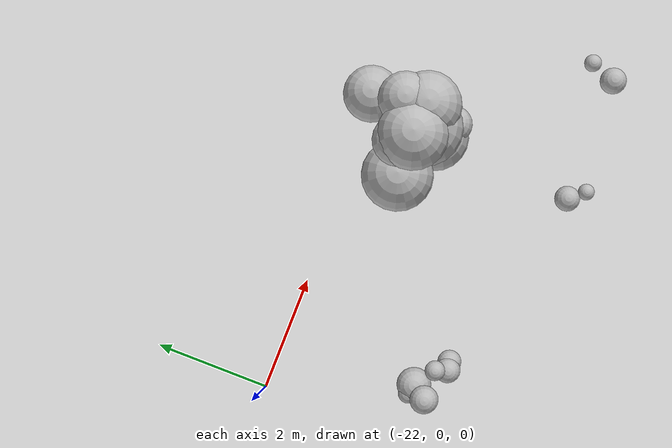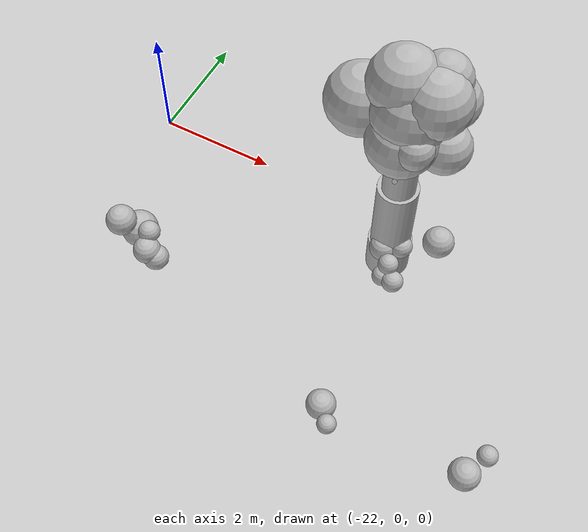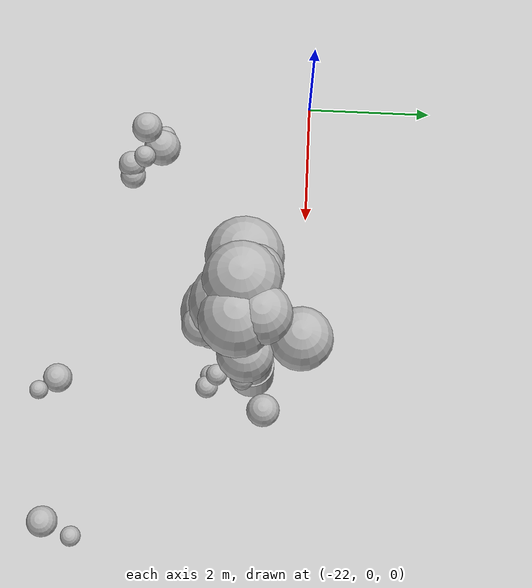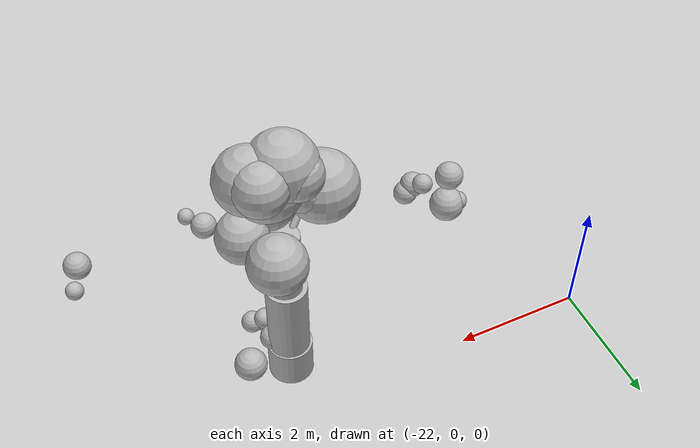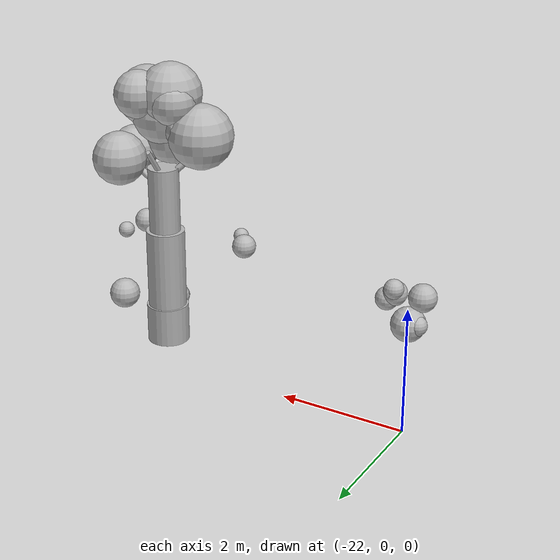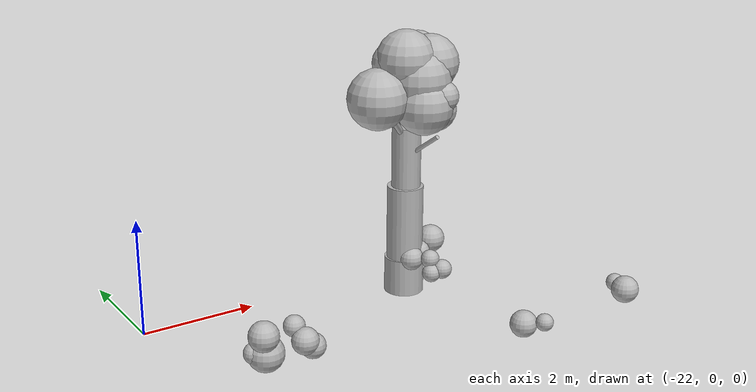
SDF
<sdf version="1.6">
 <world name="default">
  <model name="bush_10">
   <static>true</static>
   <pose>-17.3546 -0.7563 0 0 0 0</pose>
   <link name="trunk">
    <pose>0 0 1.5000 0 0 0</pose>
    <collision name="trunk_c">
     <geometry><cylinder><radius>0.3500</radius><length>3.0000</length></cylinder></geometry>
    </collision>
   </link>
   <link name="trunk_v0">
    <pose>0.0006 -0.0006 0.3100 0 0 0</pose>
    <visual name="trunk_v0_v">
     <geometry><cylinder><radius>0.3448</radius><length>0.6448</length></cylinder></geometry>
     <material>
      <script>
       <uri>model://bushfire/materials/scripts</uri>
       <uri>model://bushfire/materials/textures</uri>
       <name>Bushfire/CharBark</name>
      </script>
     </material>
    </visual>
   </link>
   <link name="trunk_v1">
    <pose>0.0047 -0.0043 1.2700 0 0 0</pose>
    <visual name="trunk_v1_v">
     <geometry><cylinder><radius>0.3150</radius><length>1.3520</length></cylinder></geometry>
     <material>
      <script>
       <uri>model://bushfire/materials/scripts</uri>
       <uri>model://bushfire/materials/textures</uri>
       <name>Bushfire/BarkStringy</name>
      </script>
     </material>
    </visual>
   </link>
   <link name="trunk_v2">
    <pose>0.0117 -0.0109 2.4600 0 0 0</pose>
    <visual name="trunk_v2_v">
     <geometry><cylinder><radius>0.2520</radius><length>1.1232</length></cylinder></geometry>
     <material>
      <script>
       <uri>model://bushfire/materials/scripts</uri>
       <uri>model://bushfire/materials/textures</uri>
       <name>Bushfire/BarkStringy</name>
      </script>
     </material>
    </visual>
   </link>
   <link name="branch0">
    <pose>0.0143 0.1804 3.0889 0 0.5647 1.4917</pose>
    <visual name="branch0_v">
     <geometry><cylinder><radius>0.0425</radius><length>0.6765</length></cylinder></geometry>
     <material>
      <script>
       <uri>model://bushfire/materials/scripts</uri>
       <uri>model://bushfire/materials/textures</uri>
       <name>Bushfire/BarkStringy</name>
      </script>
     </material>
    </visual>
   </link>
   <link name="branch1">
    <pose>-0.2603 -0.1619 3.0625 0 0.8258 3.6980</pose>
    <visual name="branch1_v">
     <geometry><cylinder><radius>0.0535</radius><length>0.8341</length></cylinder></geometry>
     <material>
      <script>
       <uri>model://bushfire/materials/scripts</uri>
       <uri>model://bushfire/materials/textures</uri>
       <name>Bushfire/BarkStringy</name>
      </script>
     </material>
    </visual>
   </link>
   <link name="branch2">
    <pose>0.0780 -0.3516 2.7149 0 0.9347 4.9307</pose>
    <visual name="branch2_v">
     <geometry><cylinder><radius>0.0353</radius><length>0.8954</length></cylinder></geometry>
     <material>
      <script>
       <uri>model://bushfire/materials/scripts</uri>
       <uri>model://bushfire/materials/textures</uri>
       <name>Bushfire/BarkStringy</name>
      </script>
     </material>
    </visual>
   </link>
   <link name="branch3">
    <pose>0.3339 0.0701 2.9145 0 0.8623 6.4902</pose>
    <visual name="branch3_v">
     <geometry><cylinder><radius>0.0526</radius><length>0.8986</length></cylinder></geometry>
     <material>
      <script>
       <uri>model://bushfire/materials/scripts</uri>
       <uri>model://bushfire/materials/textures</uri>
       <name>Bushfire/BarkStringy</name>
      </script>
     </material>
    </visual>
   </link>
   <link name="foliage0">
    <pose>0.3228 0.1455 4.2177 0 0 0</pose>
    <visual name="foliage0_v">
     <geometry><sphere><radius>0.3843</radius></sphere></geometry>
     <material>
      <script>
       <uri>model://bushfire/materials/scripts</uri>
       <uri>model://bushfire/materials/textures</uri>
       <name>Bushfire/Foliage2</name>
      </script>
     </material>
    </visual>
   </link>
   <link name="foliage1">
    <pose>-0.0994 -0.1225 4.2199 0 0 0</pose>
    <visual name="foliage1_v">
     <geometry><sphere><radius>0.5022</radius></sphere></geometry>
     <material>
      <script>
       <uri>model://bushfire/materials/scripts</uri>
       <uri>model://bushfire/materials/textures</uri>
       <name>Bushfire/Foliage1</name>
      </script>
     </material>
    </visual>
   </link>
   <link name="foliage2">
    <pose>0.3181 -0.6057 3.6298 0 0 0</pose>
    <visual name="foliage2_v">
     <geometry><sphere><radius>0.2703</radius></sphere></geometry>
     <material>
      <script>
       <uri>model://bushfire/materials/scripts</uri>
       <uri>model://bushfire/materials/textures</uri>
       <name>Bushfire/Foliage0</name>
      </script>
     </material>
    </visual>
   </link>
   <link name="foliage3">
    <pose>0.3659 -0.1664 4.1140 0 0 0</pose>
    <visual name="foliage3_v">
     <geometry><sphere><radius>0.4836</radius></sphere></geometry>
     <material>
      <script>
       <uri>model://bushfire/materials/scripts</uri>
       <uri>model://bushfire/materials/textures</uri>
       <name>Bushfire/Foliage2</name>
      </script>
     </material>
    </visual>
   </link>
   <link name="foliage4">
    <pose>-0.2369 0.0324 4.1385 0 0 0</pose>
    <visual name="foliage4_v">
     <geometry><sphere><radius>0.3698</radius></sphere></geometry>
     <material>
      <script>
       <uri>model://bushfire/materials/scripts</uri>
       <uri>model://bushfire/materials/textures</uri>
       <name>Bushfire/Foliage2</name>
      </script>
     </material>
    </visual>
   </link>
   <link name="foliage5">
    <pose>-0.6491 -0.1185 3.6133 0 0 0</pose>
    <visual name="foliage5_v">
     <geometry><sphere><radius>0.5212</radius></sphere></geometry>
     <material>
      <script>
       <uri>model://bushfire/materials/scripts</uri>
       <uri>model://bushfire/materials/textures</uri>
       <name>Bushfire/Foliage0</name>
      </script>
     </material>
    </visual>
   </link>
   <link name="foliage6">
    <pose>0.0909 -0.2421 3.8781 0 0 0</pose>
    <visual name="foliage6_v">
     <geometry><sphere><radius>0.5459</radius></sphere></geometry>
     <material>
      <script>
       <uri>model://bushfire/materials/scripts</uri>
       <uri>model://bushfire/materials/textures</uri>
       <name>Bushfire/Foliage0</name>
      </script>
     </material>
    </visual>
   </link>
   <link name="foliage7">
    <pose>0.5593 -0.0529 3.2353 0 0 0</pose>
    <visual name="foliage7_v">
     <geometry><sphere><radius>0.3782</radius></sphere></geometry>
     <material>
      <script>
       <uri>model://bushfire/materials/scripts</uri>
       <uri>model://bushfire/materials/textures</uri>
       <name>Bushfire/Foliage1</name>
      </script>
     </material>
    </visual>
   </link>
   <link name="foliage8">
    <pose>0.3502 0.6613 3.3248 0 0 0</pose>
    <visual name="foliage8_v">
     <geometry><sphere><radius>0.4212</radius></sphere></geometry>
     <material>
      <script>
       <uri>model://bushfire/materials/scripts</uri>
       <uri>model://bushfire/materials/textures</uri>
       <name>Bushfire/Foliage2</name>
      </script>
     </material>
    </visual>
   </link>
   <link name="foliage9">
    <pose>-0.4624 -0.0789 3.7015 0 0 0</pose>
    <visual name="foliage9_v">
     <geometry><sphere><radius>0.3811</radius></sphere></geometry>
     <material>
      <script>
       <uri>model://bushfire/materials/scripts</uri>
       <uri>model://bushfire/materials/textures</uri>
       <name>Bushfire/Foliage0</name>
      </script>
     </material>
    </visual>
   </link>
   <link name="foliage10">
    <pose>0.0768 -0.4181 3.4637 0 0 0</pose>
    <visual name="foliage10_v">
     <geometry><sphere><radius>0.4958</radius></sphere></geometry>
     <material>
      <script>
       <uri>model://bushfire/materials/scripts</uri>
       <uri>model://bushfire/materials/textures</uri>
       <name>Bushfire/Foliage0</name>
      </script>
     </material>
    </visual>
   </link>
  </model>
  <model name="scrub">
   <static>true</static>
   <link name="scrub8_0">
    <pose>-14.6900 -3.2803 0.4369 0 0 0</pose>
    <visual name="scrub8_0_v">
     <geometry><sphere><radius>0.1504</radius></sphere></geometry>
     <material>
      <script>
       <uri>model://bushfire/materials/scripts</uri>
       <uri>model://bushfire/materials/textures</uri>
       <name>Bushfire/Foliage0</name>
      </script>
     </material>
    </visual>
   </link>
   <link name="scrub8_4">
    <pose>-14.8730 -3.7043 0.5160 0 0 0</pose>
    <visual name="scrub8_4_v">
     <geometry><sphere><radius>0.2286</radius></sphere></geometry>
     <material>
      <script>
       <uri>model://bushfire/materials/scripts</uri>
       <uri>model://bushfire/materials/textures</uri>
       <name>Bushfire/Foliage0</name>
      </script>
     </material>
    </visual>
   </link>
   <link name="scrub15_0">
    <pose>-17.0528 -3.6974 0.4520 0 0 0</pose>
    <visual name="scrub15_0_v">
     <geometry><sphere><radius>0.2209</radius></sphere></geometry>
     <material>
      <script>
       <uri>model://bushfire/materials/scripts</uri>
       <uri>model://bushfire/materials/textures</uri>
       <name>Bushfire/Foliage2</name>
      </script>
     </material>
    </visual>
   </link>
   <link name="scrub15_2">
    <pose>-16.8374 -3.9524 0.5249 0 0 0</pose>
    <visual name="scrub15_2_v">
     <geometry><sphere><radius>0.1420</radius></sphere></geometry>
     <material>
      <script>
       <uri>model://bushfire/materials/scripts</uri>
       <uri>model://bushfire/materials/textures</uri>
       <name>Bushfire/Foliage0</name>
      </script>
     </material>
    </visual>
   </link>
   <link name="scrub30_0">
    <pose>-21.1252 -2.6037 0.8607 0 0 0</pose>
    <visual name="scrub30_0_v">
     <geometry><sphere><radius>0.2417</radius></sphere></geometry>
     <material>
      <script>
       <uri>model://bushfire/materials/scripts</uri>
       <uri>model://bushfire/materials/textures</uri>
       <name>Bushfire/Foliage1</name>
      </script>
     </material>
    </visual>
   </link>
   <link name="scrub30_1">
    <pose>-20.3940 -2.7969 0.5945 0 0 0</pose>
    <visual name="scrub30_1_v">
     <geometry><sphere><radius>0.2017</radius></sphere></geometry>
     <material>
      <script>
       <uri>model://bushfire/materials/scripts</uri>
       <uri>model://bushfire/materials/textures</uri>
       <name>Bushfire/Foliage0</name>
      </script>
     </material>
    </visual>
   </link>
   <link name="scrub30_2">
    <pose>-20.6042 -2.5987 0.8972 0 0 0</pose>
    <visual name="scrub30_2_v">
     <geometry><sphere><radius>0.1713</radius></sphere></geometry>
     <material>
      <script>
       <uri>model://bushfire/materials/scripts</uri>
       <uri>model://bushfire/materials/textures</uri>
       <name>Bushfire/Foliage2</name>
      </script>
     </material>
    </visual>
   </link>
   <link name="scrub30_3">
    <pose>-20.5342 -2.8106 0.7202 0 0 0</pose>
    <visual name="scrub30_3_v">
     <geometry><sphere><radius>0.2152</radius></sphere></geometry>
     <material>
      <script>
       <uri>model://bushfire/materials/scripts</uri>
       <uri>model://bushfire/materials/textures</uri>
       <name>Bushfire/Foliage2</name>
      </script>
     </material>
    </visual>
   </link>
   <link name="scrub30_4">
    <pose>-20.9850 -2.3828 0.4428 0 0 0</pose>
    <visual name="scrub30_4_v">
     <geometry><sphere><radius>0.2969</radius></sphere></geometry>
     <material>
      <script>
       <uri>model://bushfire/materials/scripts</uri>
       <uri>model://bushfire/materials/textures</uri>
       <name>Bushfire/Foliage2</name>
      </script>
     </material>
    </visual>
   </link>
   <link name="scrub30_5">
    <pose>-21.1620 -2.3424 0.4738 0 0 0</pose>
    <visual name="scrub30_5_v">
     <geometry><sphere><radius>0.1709</radius></sphere></geometry>
     <material>
      <script>
       <uri>model://bushfire/materials/scripts</uri>
       <uri>model://bushfire/materials/textures</uri>
       <name>Bushfire/Foliage1</name>
      </script>
     </material>
    </visual>
   </link>
   <link name="scrub71_0">
    <pose>-17.1558 -1.2709 0.7001 0 0 0</pose>
    <visual name="scrub71_0_v">
     <geometry><sphere><radius>0.1611</radius></sphere></geometry>
     <material>
      <script>
       <uri>model://bushfire/materials/scripts</uri>
       <uri>model://bushfire/materials/textures</uri>
       <name>Bushfire/Foliage2</name>
      </script>
     </material>
    </visual>
   </link>
   <link name="scrub71_1">
    <pose>-17.1231 -0.8877 0.7077 0 0 0</pose>
    <visual name="scrub71_1_v">
     <geometry><sphere><radius>0.1862</radius></sphere></geometry>
     <material>
      <script>
       <uri>model://bushfire/materials/scripts</uri>
       <uri>model://bushfire/materials/textures</uri>
       <name>Bushfire/Foliage0</name>
      </script>
     </material>
    </visual>
   </link>
   <link name="scrub71_2">
    <pose>-17.1945 -1.3700 0.4804 0 0 0</pose>
    <visual name="scrub71_2_v">
     <geometry><sphere><radius>0.1602</radius></sphere></geometry>
     <material>
      <script>
       <uri>model://bushfire/materials/scripts</uri>
       <uri>model://bushfire/materials/textures</uri>
       <name>Bushfire/Foliage1</name>
      </script>
     </material>
    </visual>
   </link>
   <link name="scrub71_3">
    <pose>-17.3706 -1.0029 0.6668 0 0 0</pose>
    <visual name="scrub71_3_v">
     <geometry><sphere><radius>0.2124</radius></sphere></geometry>
     <material>
      <script>
       <uri>model://bushfire/materials/scripts</uri>
       <uri>model://bushfire/materials/textures</uri>
       <name>Bushfire/Foliage2</name>
      </script>
     </material>
    </visual>
   </link>
   <link name="scrub71_4">
    <pose>-17.0030 -1.4186 0.5276 0 0 0</pose>
    <visual name="scrub71_4_v">
     <geometry><sphere><radius>0.1701</radius></sphere></geometry>
     <material>
      <script>
       <uri>model://bushfire/materials/scripts</uri>
       <uri>model://bushfire/materials/textures</uri>
       <name>Bushfire/Foliage2</name>
      </script>
     </material>
    </visual>
   </link>
   <link name="scrub71_5">
    <pose>-16.6355 -0.5511 0.7234 0 0 0</pose>
    <visual name="scrub71_5_v">
     <geometry><sphere><radius>0.2477</radius></sphere></geometry>
     <material>
      <script>
       <uri>model://bushfire/materials/scripts</uri>
       <uri>model://bushfire/materials/textures</uri>
       <name>Bushfire/Foliage0</name>
      </script>
     </material>
    </visual>
   </link>
  </model>
 </world>
</sdf>
